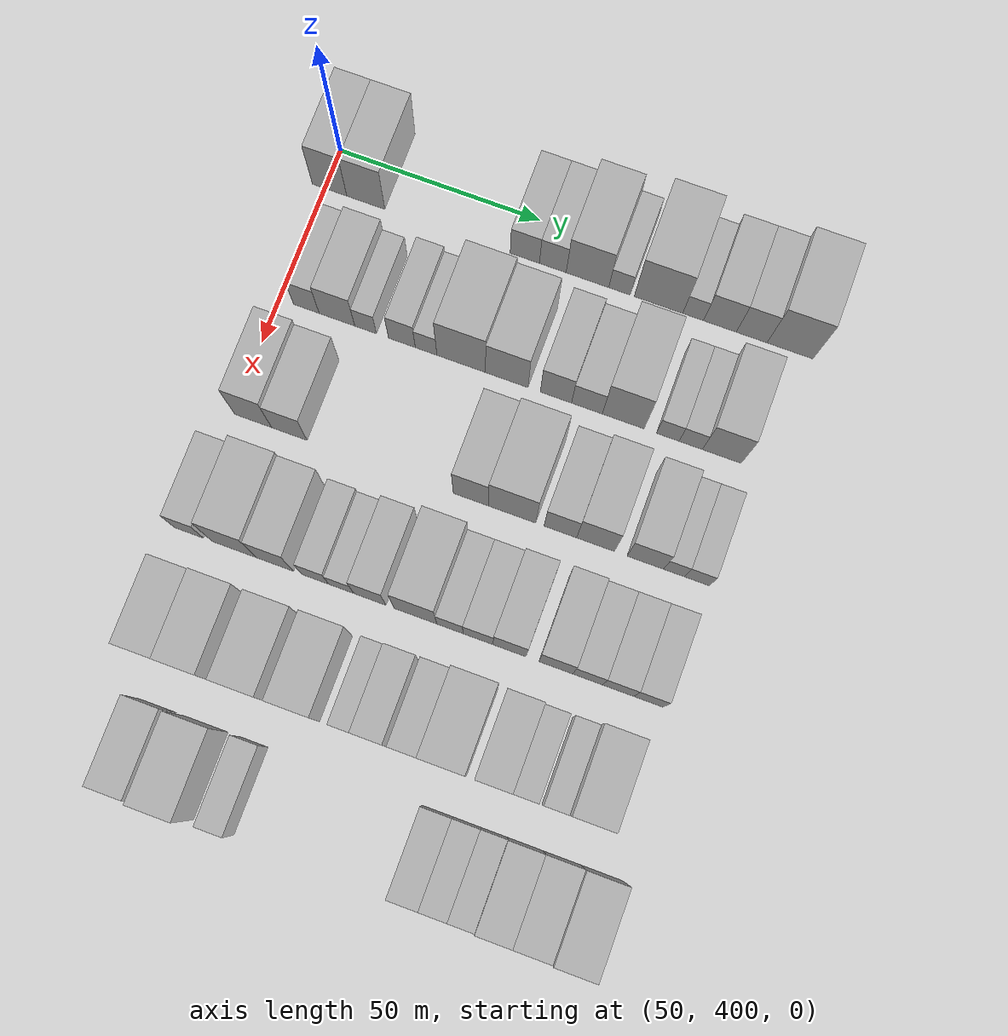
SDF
<sdf version="1.6">
 <world name="default">
  <model name="building_102">
   <static>1</static>
   <pose>50.0000 401.1192 0 0.000000 0.000000 0.000000</pose>
   <link name="link">
    <pose>0 0 10.50 0 0 0</pose>
    <collision name="collision"><geometry><box><size>20.0000 8.6512 21.0000</size></box></geometry></collision>
    <visual name="visual">
     <cast_shadows>0</cast_shadows>
     <geometry><box><size>20.0000 8.6512 21.0000</size></box></geometry>
     <material>
      <script>
       <uri>model://HANNAS_wall/materials/scripts</uri>
       <uri>model://HANNAS_wall/materials/textures</uri>
       <name>vrc/HANNAS_wall</name>
      </script>
     </material>
    </visual>
   </link>
  </model>
  <model name="building_103">
   <static>1</static>
   <pose>50.0000 410.2234 0 0.000000 0.000000 0.000000</pose>
   <link name="link">
    <pose>0 0 10.50 0 0 0</pose>
    <collision name="collision"><geometry><box><size>20.0000 9.5572 21.0000</size></box></geometry></collision>
    <visual name="visual">
     <cast_shadows>0</cast_shadows>
     <geometry><box><size>20.0000 9.5572 21.0000</size></box></geometry>
     <material>
      <script>
       <uri>model://HANNAS_wall/materials/scripts</uri>
       <uri>model://HANNAS_wall/materials/textures</uri>
       <name>vrc/HANNAS_wall</name>
      </script>
     </material>
    </visual>
   </link>
  </model>
  <model name="building_104">
   <static>1</static>
   <pose>50.0000 449.8563 0 0.000000 0.000000 0.000000</pose>
   <link name="link">
    <pose>0 0 7.50 0 0 0</pose>
    <collision name="collision"><geometry><box><size>20.0000 7.2362 15.0000</size></box></geometry></collision>
    <visual name="visual">
     <cast_shadows>0</cast_shadows>
     <geometry><box><size>20.0000 7.2362 15.0000</size></box></geometry>
     <material>
      <script>
       <uri>model://HANNAS_wall/materials/scripts</uri>
       <uri>model://HANNAS_wall/materials/textures</uri>
       <name>vrc/HANNAS_wall</name>
      </script>
     </material>
    </visual>
   </link>
  </model>
  <model name="building_105">
   <static>1</static>
   <pose>50.0000 456.7717 0 0.000000 0.000000 0.000000</pose>
   <link name="link">
    <pose>0 0 7.50 0 0 0</pose>
    <collision name="collision"><geometry><box><size>20.0000 6.5946 15.0000</size></box></geometry></collision>
    <visual name="visual">
     <cast_shadows>0</cast_shadows>
     <geometry><box><size>20.0000 6.5946 15.0000</size></box></geometry>
     <material>
      <script>
       <uri>model://HANNAS_wall/materials/scripts</uri>
       <uri>model://HANNAS_wall/materials/textures</uri>
       <name>vrc/HANNAS_wall</name>
      </script>
     </material>
    </visual>
   </link>
  </model>
  <model name="building_106">
   <static>1</static>
   <pose>50.0000 465.3094 0 0.000000 0.000000 0.000000</pose>
   <link name="link">
    <pose>0 0 10.50 0 0 0</pose>
    <collision name="collision"><geometry><box><size>20.0000 10.4807 21.0000</size></box></geometry></collision>
    <visual name="visual">
     <cast_shadows>0</cast_shadows>
     <geometry><box><size>20.0000 10.4807 21.0000</size></box></geometry>
     <material>
      <script>
       <uri>model://HANNAS_wall/materials/scripts</uri>
       <uri>model://HANNAS_wall/materials/textures</uri>
       <name>vrc/HANNAS_wall</name>
      </script>
     </material>
    </visual>
   </link>
  </model>
  <model name="building_107">
   <static>1</static>
   <pose>50.0000 473.1803 0 0.000000 0.000000 0.000000</pose>
   <link name="link">
    <pose>0 0 6.00 0 0 0</pose>
    <collision name="collision"><geometry><box><size>20.0000 5.2612 12.0000</size></box></geometry></collision>
    <visual name="visual">
     <cast_shadows>0</cast_shadows>
     <geometry><box><size>20.0000 5.2612 12.0000</size></box></geometry>
     <material>
      <script>
       <uri>model://HANNAS_wall/materials/scripts</uri>
       <uri>model://HANNAS_wall/materials/textures</uri>
       <name>vrc/HANNAS_wall</name>
      </script>
     </material>
    </visual>
   </link>
  </model>
  <model name="building_108">
   <static>1</static>
   <pose>50.0000 482.7306 0 0.000000 0.000000 0.000000</pose>
   <link name="link">
    <pose>0 0 12.00 0 0 0</pose>
    <collision name="collision"><geometry><box><size>20.0000 11.8395 24.0000</size></box></geometry></collision>
    <visual name="visual">
     <cast_shadows>0</cast_shadows>
     <geometry><box><size>20.0000 11.8395 24.0000</size></box></geometry>
     <material>
      <script>
       <uri>model://HANNAS_wall/materials/scripts</uri>
       <uri>model://HANNAS_wall/materials/textures</uri>
       <name>vrc/HANNAS_wall</name>
      </script>
     </material>
    </visual>
   </link>
  </model>
  <model name="building_109">
   <static>1</static>
   <pose>50.0000 491.1917 0 0.000000 0.000000 0.000000</pose>
   <link name="link">
    <pose>0 0 6.00 0 0 0</pose>
    <collision name="collision"><geometry><box><size>20.0000 5.0825 12.0000</size></box></geometry></collision>
    <visual name="visual">
     <cast_shadows>0</cast_shadows>
     <geometry><box><size>20.0000 5.0825 12.0000</size></box></geometry>
     <material>
      <script>
       <uri>model://HANNAS_wall/materials/scripts</uri>
       <uri>model://HANNAS_wall/materials/textures</uri>
       <name>vrc/HANNAS_wall</name>
      </script>
     </material>
    </visual>
   </link>
  </model>
  <model name="building_110">
   <static>1</static>
   <pose>50.0000 497.7249 0 0.000000 0.000000 0.000000</pose>
   <link name="link">
    <pose>0 0 9.00 0 0 0</pose>
    <collision name="collision"><geometry><box><size>20.0000 7.9839 18.0000</size></box></geometry></collision>
    <visual name="visual">
     <cast_shadows>0</cast_shadows>
     <geometry><box><size>20.0000 7.9839 18.0000</size></box></geometry>
     <material>
      <script>
       <uri>model://HANNAS_wall/materials/scripts</uri>
       <uri>model://HANNAS_wall/materials/textures</uri>
       <name>vrc/HANNAS_wall</name>
      </script>
     </material>
    </visual>
   </link>
  </model>
  <model name="building_111">
   <static>1</static>
   <pose>50.0000 505.4393 0 0.000000 0.000000 0.000000</pose>
   <link name="link">
    <pose>0 0 9.00 0 0 0</pose>
    <collision name="collision"><geometry><box><size>20.0000 7.4450 18.0000</size></box></geometry></collision>
    <visual name="visual">
     <cast_shadows>0</cast_shadows>
     <geometry><box><size>20.0000 7.4450 18.0000</size></box></geometry>
     <material>
      <script>
       <uri>model://HANNAS_wall/materials/scripts</uri>
       <uri>model://HANNAS_wall/materials/textures</uri>
       <name>vrc/HANNAS_wall</name>
      </script>
     </material>
    </visual>
   </link>
  </model>
  <model name="building_112">
   <static>1</static>
   <pose>50.0000 514.7211 0 0.000000 0.000000 0.000000</pose>
   <link name="link">
    <pose>0 0 12.00 0 0 0</pose>
    <collision name="collision"><geometry><box><size>20.0000 11.1186 24.0000</size></box></geometry></collision>
    <visual name="visual">
     <cast_shadows>0</cast_shadows>
     <geometry><box><size>20.0000 11.1186 24.0000</size></box></geometry>
     <material>
      <script>
       <uri>model://HANNAS_wall/materials/scripts</uri>
       <uri>model://HANNAS_wall/materials/textures</uri>
       <name>vrc/HANNAS_wall</name>
      </script>
     </material>
    </visual>
   </link>
  </model>
  <model name="building_213">
   <static>1</static>
   <pose>79.0000 406.6968 0 0.000000 0.000000 0.000000</pose>
   <link name="link">
    <pose>0 0 7.50 0 0 0</pose>
    <collision name="collision"><geometry><box><size>20.0000 6.3321 15.0000</size></box></geometry></collision>
    <visual name="visual">
     <cast_shadows>0</cast_shadows>
     <geometry><box><size>20.0000 6.3321 15.0000</size></box></geometry>
     <material>
      <script>
       <uri>model://HANNAS_wall/materials/scripts</uri>
       <uri>model://HANNAS_wall/materials/textures</uri>
       <name>vrc/HANNAS_wall</name>
      </script>
     </material>
    </visual>
   </link>
  </model>
  <model name="building_214">
   <static>1</static>
   <pose>79.0000 414.2678 0 0.000000 0.000000 0.000000</pose>
   <link name="link">
    <pose>0 0 9.00 0 0 0</pose>
    <collision name="collision"><geometry><box><size>20.0000 8.8099 18.0000</size></box></geometry></collision>
    <visual name="visual">
     <cast_shadows>0</cast_shadows>
     <geometry><box><size>20.0000 8.8099 18.0000</size></box></geometry>
     <material>
      <script>
       <uri>model://HANNAS_wall/materials/scripts</uri>
       <uri>model://HANNAS_wall/materials/textures</uri>
       <name>vrc/HANNAS_wall</name>
      </script>
     </material>
    </visual>
   </link>
  </model>
  <model name="building_215">
   <static>1</static>
   <pose>79.0000 421.3421 0 0.000000 0.000000 0.000000</pose>
   <link name="link">
    <pose>0 0 6.00 0 0 0</pose>
    <collision name="collision"><geometry><box><size>20.0000 5.3387 12.0000</size></box></geometry></collision>
    <visual name="visual">
     <cast_shadows>0</cast_shadows>
     <geometry><box><size>20.0000 5.3387 12.0000</size></box></geometry>
     <material>
      <script>
       <uri>model://HANNAS_wall/materials/scripts</uri>
       <uri>model://HANNAS_wall/materials/textures</uri>
       <name>vrc/HANNAS_wall</name>
      </script>
     </material>
    </visual>
   </link>
  </model>
  <model name="building_216">
   <static>1</static>
   <pose>79.0000 430.2997 0 0.000000 0.000000 0.000000</pose>
   <link name="link">
    <pose>0 0 7.50 0 0 0</pose>
    <collision name="collision"><geometry><box><size>20.0000 6.5765 15.0000</size></box></geometry></collision>
    <visual name="visual">
     <cast_shadows>0</cast_shadows>
     <geometry><box><size>20.0000 6.5765 15.0000</size></box></geometry>
     <material>
      <script>
       <uri>model://HANNAS_wall/materials/scripts</uri>
       <uri>model://HANNAS_wall/materials/textures</uri>
       <name>vrc/HANNAS_wall</name>
      </script>
     </material>
    </visual>
   </link>
  </model>
  <model name="building_217">
   <static>1</static>
   <pose>79.0000 436.2301 0 0.000000 0.000000 0.000000</pose>
   <link name="link">
    <pose>0 0 6.00 0 0 0</pose>
    <collision name="collision"><geometry><box><size>20.0000 5.2844 12.0000</size></box></geometry></collision>
    <visual name="visual">
     <cast_shadows>0</cast_shadows>
     <geometry><box><size>20.0000 5.2844 12.0000</size></box></geometry>
     <material>
      <script>
       <uri>model://HANNAS_wall/materials/scripts</uri>
       <uri>model://HANNAS_wall/materials/textures</uri>
       <name>vrc/HANNAS_wall</name>
      </script>
     </material>
    </visual>
   </link>
  </model>
  <model name="building_218">
   <static>1</static>
   <pose>79.0000 444.8339 0 0.000000 0.000000 0.000000</pose>
   <link name="link">
    <pose>0 0 12.00 0 0 0</pose>
    <collision name="collision"><geometry><box><size>20.0000 11.9231 24.0000</size></box></geometry></collision>
    <visual name="visual">
     <cast_shadows>0</cast_shadows>
     <geometry><box><size>20.0000 11.9231 24.0000</size></box></geometry>
     <material>
      <script>
       <uri>model://HANNAS_wall/materials/scripts</uri>
       <uri>model://HANNAS_wall/materials/textures</uri>
       <name>vrc/HANNAS_wall</name>
      </script>
     </material>
    </visual>
   </link>
  </model>
  <model name="building_219">
   <static>1</static>
   <pose>79.0000 455.9628 0 0.000000 0.000000 0.000000</pose>
   <link name="link">
    <pose>0 0 10.50 0 0 0</pose>
    <collision name="collision"><geometry><box><size>20.0000 10.3347 21.0000</size></box></geometry></collision>
    <visual name="visual">
     <cast_shadows>0</cast_shadows>
     <geometry><box><size>20.0000 10.3347 21.0000</size></box></geometry>
     <material>
      <script>
       <uri>model://HANNAS_wall/materials/scripts</uri>
       <uri>model://HANNAS_wall/materials/textures</uri>
       <name>vrc/HANNAS_wall</name>
      </script>
     </material>
    </visual>
   </link>
  </model>
  <model name="building_220">
   <static>1</static>
   <pose>79.0000 467.9159 0 0.000000 0.000000 0.000000</pose>
   <link name="link">
    <pose>0 0 9.00 0 0 0</pose>
    <collision name="collision"><geometry><box><size>20.0000 7.5715 18.0000</size></box></geometry></collision>
    <visual name="visual">
     <cast_shadows>0</cast_shadows>
     <geometry><box><size>20.0000 7.5715 18.0000</size></box></geometry>
     <material>
      <script>
       <uri>model://HANNAS_wall/materials/scripts</uri>
       <uri>model://HANNAS_wall/materials/textures</uri>
       <name>vrc/HANNAS_wall</name>
      </script>
     </material>
    </visual>
   </link>
  </model>
  <model name="building_221">
   <static>1</static>
   <pose>79.0000 475.4288 0 0.000000 0.000000 0.000000</pose>
   <link name="link">
    <pose>0 0 7.50 0 0 0</pose>
    <collision name="collision"><geometry><box><size>20.0000 7.4543 15.0000</size></box></geometry></collision>
    <visual name="visual">
     <cast_shadows>0</cast_shadows>
     <geometry><box><size>20.0000 7.4543 15.0000</size></box></geometry>
     <material>
      <script>
       <uri>model://HANNAS_wall/materials/scripts</uri>
       <uri>model://HANNAS_wall/materials/textures</uri>
       <name>vrc/HANNAS_wall</name>
      </script>
     </material>
    </visual>
   </link>
  </model>
  <model name="building_222">
   <static>1</static>
   <pose>79.0000 484.1925 0 0.000000 0.000000 0.000000</pose>
   <link name="link">
    <pose>0 0 12.00 0 0 0</pose>
    <collision name="collision"><geometry><box><size>20.0000 10.0730 24.0000</size></box></geometry></collision>
    <visual name="visual">
     <cast_shadows>0</cast_shadows>
     <geometry><box><size>20.0000 10.0730 24.0000</size></box></geometry>
     <material>
      <script>
       <uri>model://HANNAS_wall/materials/scripts</uri>
       <uri>model://HANNAS_wall/materials/textures</uri>
       <name>vrc/HANNAS_wall</name>
      </script>
     </material>
    </visual>
   </link>
  </model>
  <model name="building_223">
   <static>1</static>
   <pose>79.0000 494.9337 0 0.000000 0.000000 0.000000</pose>
   <link name="link">
    <pose>0 0 6.00 0 0 0</pose>
    <collision name="collision"><geometry><box><size>20.0000 5.4095 12.0000</size></box></geometry></collision>
    <visual name="visual">
     <cast_shadows>0</cast_shadows>
     <geometry><box><size>20.0000 5.4095 12.0000</size></box></geometry>
     <material>
      <script>
       <uri>model://HANNAS_wall/materials/scripts</uri>
       <uri>model://HANNAS_wall/materials/textures</uri>
       <name>vrc/HANNAS_wall</name>
      </script>
     </material>
    </visual>
   </link>
  </model>
  <model name="building_224">
   <static>1</static>
   <pose>79.0000 500.4293 0 0.000000 0.000000 0.000000</pose>
   <link name="link">
    <pose>0 0 6.00 0 0 0</pose>
    <collision name="collision"><geometry><box><size>20.0000 5.5817 12.0000</size></box></geometry></collision>
    <visual name="visual">
     <cast_shadows>0</cast_shadows>
     <geometry><box><size>20.0000 5.5817 12.0000</size></box></geometry>
     <material>
      <script>
       <uri>model://HANNAS_wall/materials/scripts</uri>
       <uri>model://HANNAS_wall/materials/textures</uri>
       <name>vrc/HANNAS_wall</name>
      </script>
     </material>
    </visual>
   </link>
  </model>
  <model name="building_225">
   <static>1</static>
   <pose>79.0000 507.8775 0 0.000000 0.000000 0.000000</pose>
   <link name="link">
    <pose>0 0 10.50 0 0 0</pose>
    <collision name="collision"><geometry><box><size>20.0000 9.3146 21.0000</size></box></geometry></collision>
    <visual name="visual">
     <cast_shadows>0</cast_shadows>
     <geometry><box><size>20.0000 9.3146 21.0000</size></box></geometry>
     <material>
      <script>
       <uri>model://HANNAS_wall/materials/scripts</uri>
       <uri>model://HANNAS_wall/materials/textures</uri>
       <name>vrc/HANNAS_wall</name>
      </script>
     </material>
    </visual>
   </link>
  </model>
  <model name="building_325">
   <static>1</static>
   <pose>108.0000 405.0878 0 0.000000 0.000000 0.000000</pose>
   <link name="link">
    <pose>0 0 10.50 0 0 0</pose>
    <collision name="collision"><geometry><box><size>20.0000 9.0426 21.0000</size></box></geometry></collision>
    <visual name="visual">
     <cast_shadows>0</cast_shadows>
     <geometry><box><size>20.0000 9.0426 21.0000</size></box></geometry>
     <material>
      <script>
       <uri>model://HANNAS_wall/materials/scripts</uri>
       <uri>model://HANNAS_wall/materials/textures</uri>
       <name>vrc/HANNAS_wall</name>
      </script>
     </material>
    </visual>
   </link>
  </model>
  <model name="building_326">
   <static>1</static>
   <pose>108.0000 413.9372 0 0.000000 0.000000 0.000000</pose>
   <link name="link">
    <pose>0 0 9.00 0 0 0</pose>
    <collision name="collision"><geometry><box><size>20.0000 8.6563 18.0000</size></box></geometry></collision>
    <visual name="visual">
     <cast_shadows>0</cast_shadows>
     <geometry><box><size>20.0000 8.6563 18.0000</size></box></geometry>
     <material>
      <script>
       <uri>model://HANNAS_wall/materials/scripts</uri>
       <uri>model://HANNAS_wall/materials/textures</uri>
       <name>vrc/HANNAS_wall</name>
      </script>
     </material>
    </visual>
   </link>
  </model>
  <model name="building_327">
   <static>1</static>
   <pose>108.0000 457.9388 0 0.000000 0.000000 0.000000</pose>
   <link name="link">
    <pose>0 0 10.50 0 0 0</pose>
    <collision name="collision"><geometry><box><size>20.0000 8.4489 21.0000</size></box></geometry></collision>
    <visual name="visual">
     <cast_shadows>0</cast_shadows>
     <geometry><box><size>20.0000 8.4489 21.0000</size></box></geometry>
     <material>
      <script>
       <uri>model://HANNAS_wall/materials/scripts</uri>
       <uri>model://HANNAS_wall/materials/textures</uri>
       <name>vrc/HANNAS_wall</name>
      </script>
     </material>
    </visual>
   </link>
  </model>
  <model name="building_328">
   <static>1</static>
   <pose>108.0000 467.8177 0 0.000000 0.000000 0.000000</pose>
   <link name="link">
    <pose>0 0 12.00 0 0 0</pose>
    <collision name="collision"><geometry><box><size>20.0000 11.3090 24.0000</size></box></geometry></collision>
    <visual name="visual">
     <cast_shadows>0</cast_shadows>
     <geometry><box><size>20.0000 11.3090 24.0000</size></box></geometry>
     <material>
      <script>
       <uri>model://HANNAS_wall/materials/scripts</uri>
       <uri>model://HANNAS_wall/materials/textures</uri>
       <name>vrc/HANNAS_wall</name>
      </script>
     </material>
    </visual>
   </link>
  </model>
  <model name="building_329">
   <static>1</static>
   <pose>108.0000 479.3497 0 0.000000 0.000000 0.000000</pose>
   <link name="link">
    <pose>0 0 9.00 0 0 0</pose>
    <collision name="collision"><geometry><box><size>20.0000 7.7550 18.0000</size></box></geometry></collision>
    <visual name="visual">
     <cast_shadows>0</cast_shadows>
     <geometry><box><size>20.0000 7.7550 18.0000</size></box></geometry>
     <material>
      <script>
       <uri>model://HANNAS_wall/materials/scripts</uri>
       <uri>model://HANNAS_wall/materials/textures</uri>
       <name>vrc/HANNAS_wall</name>
      </script>
     </material>
    </visual>
   </link>
  </model>
  <model name="building_330">
   <static>1</static>
   <pose>108.0000 487.7214 0 0.000000 0.000000 0.000000</pose>
   <link name="link">
    <pose>0 0 10.50 0 0 0</pose>
    <collision name="collision"><geometry><box><size>20.0000 8.9883 21.0000</size></box></geometry></collision>
    <visual name="visual">
     <cast_shadows>0</cast_shadows>
     <geometry><box><size>20.0000 8.9883 21.0000</size></box></geometry>
     <material>
      <script>
       <uri>model://HANNAS_wall/materials/scripts</uri>
       <uri>model://HANNAS_wall/materials/textures</uri>
       <name>vrc/HANNAS_wall</name>
      </script>
     </material>
    </visual>
   </link>
  </model>
  <model name="building_331">
   <static>1</static>
   <pose>108.0000 499.5410 0 0.000000 0.000000 0.000000</pose>
   <link name="link">
    <pose>0 0 9.00 0 0 0</pose>
    <collision name="collision"><geometry><box><size>20.0000 8.6510 18.0000</size></box></geometry></collision>
    <visual name="visual">
     <cast_shadows>0</cast_shadows>
     <geometry><box><size>20.0000 8.6510 18.0000</size></box></geometry>
     <material>
      <script>
       <uri>model://HANNAS_wall/materials/scripts</uri>
       <uri>model://HANNAS_wall/materials/textures</uri>
       <name>vrc/HANNAS_wall</name>
      </script>
     </material>
    </visual>
   </link>
  </model>
  <model name="building_332">
   <static>1</static>
   <pose>108.0000 506.3463 0 0.000000 0.000000 0.000000</pose>
   <link name="link">
    <pose>0 0 6.00 0 0 0</pose>
    <collision name="collision"><geometry><box><size>20.0000 4.9596 12.0000</size></box></geometry></collision>
    <visual name="visual">
     <cast_shadows>0</cast_shadows>
     <geometry><box><size>20.0000 4.9596 12.0000</size></box></geometry>
     <material>
      <script>
       <uri>model://HANNAS_wall/materials/scripts</uri>
       <uri>model://HANNAS_wall/materials/textures</uri>
       <name>vrc/HANNAS_wall</name>
      </script>
     </material>
    </visual>
   </link>
  </model>
  <model name="building_333">
   <static>1</static>
   <pose>108.0000 511.7402 0 0.000000 0.000000 0.000000</pose>
   <link name="link">
    <pose>0 0 6.00 0 0 0</pose>
    <collision name="collision"><geometry><box><size>20.0000 5.8282 12.0000</size></box></geometry></collision>
    <visual name="visual">
     <cast_shadows>0</cast_shadows>
     <geometry><box><size>20.0000 5.8282 12.0000</size></box></geometry>
     <material>
      <script>
       <uri>model://HANNAS_wall/materials/scripts</uri>
       <uri>model://HANNAS_wall/materials/textures</uri>
       <name>vrc/HANNAS_wall</name>
      </script>
     </material>
    </visual>
   </link>
  </model>
  <model name="building_437">
   <static>1</static>
   <pose>137.0000 401.2152 0 0.000000 0.000000 0.000000</pose>
   <link name="link">
    <pose>0 0 7.50 0 0 0</pose>
    <collision name="collision"><geometry><box><size>20.0000 7.1507 15.0000</size></box></geometry></collision>
    <visual name="visual">
     <cast_shadows>0</cast_shadows>
     <geometry><box><size>20.0000 7.1507 15.0000</size></box></geometry>
     <material>
      <script>
       <uri>model://HANNAS_wall/materials/scripts</uri>
       <uri>model://HANNAS_wall/materials/textures</uri>
       <name>vrc/HANNAS_wall</name>
      </script>
     </material>
    </visual>
   </link>
  </model>
  <model name="building_438">
   <static>1</static>
   <pose>137.0000 412.1539 0 0.000000 0.000000 0.000000</pose>
   <link name="link">
    <pose>0 0 12.00 0 0 0</pose>
    <collision name="collision"><geometry><box><size>20.0000 10.7267 24.0000</size></box></geometry></collision>
    <visual name="visual">
     <cast_shadows>0</cast_shadows>
     <geometry><box><size>20.0000 10.7267 24.0000</size></box></geometry>
     <material>
      <script>
       <uri>model://HANNAS_wall/materials/scripts</uri>
       <uri>model://HANNAS_wall/materials/textures</uri>
       <name>vrc/HANNAS_wall</name>
      </script>
     </material>
    </visual>
   </link>
  </model>
  <model name="building_439">
   <static>1</static>
   <pose>137.0000 421.9658 0 0.000000 0.000000 0.000000</pose>
   <link name="link">
    <pose>0 0 10.50 0 0 0</pose>
    <collision name="collision"><geometry><box><size>20.0000 8.8972 21.0000</size></box></geometry></collision>
    <visual name="visual">
     <cast_shadows>0</cast_shadows>
     <geometry><box><size>20.0000 8.8972 21.0000</size></box></geometry>
     <material>
      <script>
       <uri>model://HANNAS_wall/materials/scripts</uri>
       <uri>model://HANNAS_wall/materials/textures</uri>
       <name>vrc/HANNAS_wall</name>
      </script>
     </material>
    </visual>
   </link>
  </model>
  <model name="building_440">
   <static>1</static>
   <pose>137.0000 431.6590 0 0.000000 0.000000 0.000000</pose>
   <link name="link">
    <pose>0 0 7.50 0 0 0</pose>
    <collision name="collision"><geometry><box><size>20.0000 6.4891 15.0000</size></box></geometry></collision>
    <visual name="visual">
     <cast_shadows>0</cast_shadows>
     <geometry><box><size>20.0000 6.4891 15.0000</size></box></geometry>
     <material>
      <script>
       <uri>model://HANNAS_wall/materials/scripts</uri>
       <uri>model://HANNAS_wall/materials/textures</uri>
       <name>vrc/HANNAS_wall</name>
      </script>
     </material>
    </visual>
   </link>
  </model>
  <model name="building_441">
   <static>1</static>
   <pose>137.0000 437.8970 0 0.000000 0.000000 0.000000</pose>
   <link name="link">
    <pose>0 0 6.00 0 0 0</pose>
    <collision name="collision"><geometry><box><size>20.0000 5.9869 12.0000</size></box></geometry></collision>
    <visual name="visual">
     <cast_shadows>0</cast_shadows>
     <geometry><box><size>20.0000 5.9869 12.0000</size></box></geometry>
     <material>
      <script>
       <uri>model://HANNAS_wall/materials/scripts</uri>
       <uri>model://HANNAS_wall/materials/textures</uri>
       <name>vrc/HANNAS_wall</name>
      </script>
     </material>
    </visual>
   </link>
  </model>
  <model name="building_442">
   <static>1</static>
   <pose>137.0000 444.7171 0 0.000000 0.000000 0.000000</pose>
   <link name="link">
    <pose>0 0 9.00 0 0 0</pose>
    <collision name="collision"><geometry><box><size>20.0000 7.6533 18.0000</size></box></geometry></collision>
    <visual name="visual">
     <cast_shadows>0</cast_shadows>
     <geometry><box><size>20.0000 7.6533 18.0000</size></box></geometry>
     <material>
      <script>
       <uri>model://HANNAS_wall/materials/scripts</uri>
       <uri>model://HANNAS_wall/materials/textures</uri>
       <name>vrc/HANNAS_wall</name>
      </script>
     </material>
    </visual>
   </link>
  </model>
  <model name="building_443">
   <static>1</static>
   <pose>137.0000 455.5879 0 0.000000 0.000000 0.000000</pose>
   <link name="link">
    <pose>0 0 12.00 0 0 0</pose>
    <collision name="collision"><geometry><box><size>20.0000 10.0884 24.0000</size></box></geometry></collision>
    <visual name="visual">
     <cast_shadows>0</cast_shadows>
     <geometry><box><size>20.0000 10.0884 24.0000</size></box></geometry>
     <material>
      <script>
       <uri>model://HANNAS_wall/materials/scripts</uri>
       <uri>model://HANNAS_wall/materials/textures</uri>
       <name>vrc/HANNAS_wall</name>
      </script>
     </material>
    </visual>
   </link>
  </model>
  <model name="building_444">
   <static>1</static>
   <pose>137.0000 463.7456 0 0.000000 0.000000 0.000000</pose>
   <link name="link">
    <pose>0 0 7.50 0 0 0</pose>
    <collision name="collision"><geometry><box><size>20.0000 6.2269 15.0000</size></box></geometry></collision>
    <visual name="visual">
     <cast_shadows>0</cast_shadows>
     <geometry><box><size>20.0000 6.2269 15.0000</size></box></geometry>
     <material>
      <script>
       <uri>model://HANNAS_wall/materials/scripts</uri>
       <uri>model://HANNAS_wall/materials/textures</uri>
       <name>vrc/HANNAS_wall</name>
      </script>
     </material>
    </visual>
   </link>
  </model>
  <model name="building_445">
   <static>1</static>
   <pose>137.0000 470.3722 0 0.000000 0.000000 0.000000</pose>
   <link name="link">
    <pose>0 0 7.50 0 0 0</pose>
    <collision name="collision"><geometry><box><size>20.0000 7.0263 15.0000</size></box></geometry></collision>
    <visual name="visual">
     <cast_shadows>0</cast_shadows>
     <geometry><box><size>20.0000 7.0263 15.0000</size></box></geometry>
     <material>
      <script>
       <uri>model://HANNAS_wall/materials/scripts</uri>
       <uri>model://HANNAS_wall/materials/textures</uri>
       <name>vrc/HANNAS_wall</name>
      </script>
     </material>
    </visual>
   </link>
  </model>
  <model name="building_446">
   <static>1</static>
   <pose>137.0000 477.7766 0 0.000000 0.000000 0.000000</pose>
   <link name="link">
    <pose>0 0 9.00 0 0 0</pose>
    <collision name="collision"><geometry><box><size>20.0000 7.7826 18.0000</size></box></geometry></collision>
    <visual name="visual">
     <cast_shadows>0</cast_shadows>
     <geometry><box><size>20.0000 7.7826 18.0000</size></box></geometry>
     <material>
      <script>
       <uri>model://HANNAS_wall/materials/scripts</uri>
       <uri>model://HANNAS_wall/materials/textures</uri>
       <name>vrc/HANNAS_wall</name>
      </script>
     </material>
    </visual>
   </link>
  </model>
  <model name="building_447">
   <static>1</static>
   <pose>137.0000 488.6345 0 0.000000 0.000000 0.000000</pose>
   <link name="link">
    <pose>0 0 9.00 0 0 0</pose>
    <collision name="collision"><geometry><box><size>20.0000 7.9332 18.0000</size></box></geometry></collision>
    <visual name="visual">
     <cast_shadows>0</cast_shadows>
     <geometry><box><size>20.0000 7.9332 18.0000</size></box></geometry>
     <material>
      <script>
       <uri>model://HANNAS_wall/materials/scripts</uri>
       <uri>model://HANNAS_wall/materials/textures</uri>
       <name>vrc/HANNAS_wall</name>
      </script>
     </material>
    </visual>
   </link>
  </model>
  <model name="building_448">
   <static>1</static>
   <pose>137.0000 496.0687 0 0.000000 0.000000 0.000000</pose>
   <link name="link">
    <pose>0 0 7.50 0 0 0</pose>
    <collision name="collision"><geometry><box><size>20.0000 6.9352 15.0000</size></box></geometry></collision>
    <visual name="visual">
     <cast_shadows>0</cast_shadows>
     <geometry><box><size>20.0000 6.9352 15.0000</size></box></geometry>
     <material>
      <script>
       <uri>model://HANNAS_wall/materials/scripts</uri>
       <uri>model://HANNAS_wall/materials/textures</uri>
       <name>vrc/HANNAS_wall</name>
      </script>
     </material>
    </visual>
   </link>
  </model>
  <model name="building_449">
   <static>1</static>
   <pose>137.0000 503.1755 0 0.000000 0.000000 0.000000</pose>
   <link name="link">
    <pose>0 0 7.50 0 0 0</pose>
    <collision name="collision"><geometry><box><size>20.0000 7.2783 15.0000</size></box></geometry></collision>
    <visual name="visual">
     <cast_shadows>0</cast_shadows>
     <geometry><box><size>20.0000 7.2783 15.0000</size></box></geometry>
     <material>
      <script>
       <uri>model://HANNAS_wall/materials/scripts</uri>
       <uri>model://HANNAS_wall/materials/textures</uri>
       <name>vrc/HANNAS_wall</name>
      </script>
     </material>
    </visual>
   </link>
  </model>
  <model name="building_450">
   <static>1</static>
   <pose>137.0000 510.2022 0 0.000000 0.000000 0.000000</pose>
   <link name="link">
    <pose>0 0 7.50 0 0 0</pose>
    <collision name="collision"><geometry><box><size>20.0000 6.7752 15.0000</size></box></geometry></collision>
    <visual name="visual">
     <cast_shadows>0</cast_shadows>
     <geometry><box><size>20.0000 6.7752 15.0000</size></box></geometry>
     <material>
      <script>
       <uri>model://HANNAS_wall/materials/scripts</uri>
       <uri>model://HANNAS_wall/materials/textures</uri>
       <name>vrc/HANNAS_wall</name>
      </script>
     </material>
    </visual>
   </link>
  </model>
  <model name="building_556">
   <static>1</static>
   <pose>166.0000 404.5984 0 0.000000 0.000000 0.000000</pose>
   <link name="link">
    <pose>0 0 10.50 0 0 0</pose>
    <collision name="collision"><geometry><box><size>20.0000 9.9008 21.0000</size></box></geometry></collision>
    <visual name="visual">
     <cast_shadows>0</cast_shadows>
     <geometry><box><size>20.0000 9.9008 21.0000</size></box></geometry>
     <material>
      <script>
       <uri>model://HANNAS_wall/materials/scripts</uri>
       <uri>model://HANNAS_wall/materials/textures</uri>
       <name>vrc/HANNAS_wall</name>
      </script>
     </material>
    </visual>
   </link>
  </model>
  <model name="building_557">
   <static>1</static>
   <pose>166.0000 414.4468 0 0.000000 0.000000 0.000000</pose>
   <link name="link">
    <pose>0 0 12.00 0 0 0</pose>
    <collision name="collision"><geometry><box><size>20.0000 9.7961 24.0000</size></box></geometry></collision>
    <visual name="visual">
     <cast_shadows>0</cast_shadows>
     <geometry><box><size>20.0000 9.7961 24.0000</size></box></geometry>
     <material>
      <script>
       <uri>model://HANNAS_wall/materials/scripts</uri>
       <uri>model://HANNAS_wall/materials/textures</uri>
       <name>vrc/HANNAS_wall</name>
      </script>
     </material>
    </visual>
   </link>
  </model>
  <model name="building_558">
   <static>1</static>
   <pose>166.0000 426.5941 0 0.000000 0.000000 0.000000</pose>
   <link name="link">
    <pose>0 0 10.50 0 0 0</pose>
    <collision name="collision"><geometry><box><size>20.0000 10.4985 21.0000</size></box></geometry></collision>
    <visual name="visual">
     <cast_shadows>0</cast_shadows>
     <geometry><box><size>20.0000 10.4985 21.0000</size></box></geometry>
     <material>
      <script>
       <uri>model://HANNAS_wall/materials/scripts</uri>
       <uri>model://HANNAS_wall/materials/textures</uri>
       <name>vrc/HANNAS_wall</name>
      </script>
     </material>
    </visual>
   </link>
  </model>
  <model name="building_559">
   <static>1</static>
   <pose>166.0000 438.9332 0 0.000000 0.000000 0.000000</pose>
   <link name="link">
    <pose>0 0 10.50 0 0 0</pose>
    <collision name="collision"><geometry><box><size>20.0000 10.1797 21.0000</size></box></geometry></collision>
    <visual name="visual">
     <cast_shadows>0</cast_shadows>
     <geometry><box><size>20.0000 10.1797 21.0000</size></box></geometry>
     <material>
      <script>
       <uri>model://HANNAS_wall/materials/scripts</uri>
       <uri>model://HANNAS_wall/materials/textures</uri>
       <name>vrc/HANNAS_wall</name>
      </script>
     </material>
    </visual>
   </link>
  </model>
  <model name="building_560">
   <static>1</static>
   <pose>166.0000 449.6420 0 0.000000 0.000000 0.000000</pose>
   <link name="link">
    <pose>0 0 6.00 0 0 0</pose>
    <collision name="collision"><geometry><box><size>20.0000 5.2378 12.0000</size></box></geometry></collision>
    <visual name="visual">
     <cast_shadows>0</cast_shadows>
     <geometry><box><size>20.0000 5.2378 12.0000</size></box></geometry>
     <material>
      <script>
       <uri>model://HANNAS_wall/materials/scripts</uri>
       <uri>model://HANNAS_wall/materials/textures</uri>
       <name>vrc/HANNAS_wall</name>
      </script>
     </material>
    </visual>
   </link>
  </model>
  <model name="building_561">
   <static>1</static>
   <pose>166.0000 455.9645 0 0.000000 0.000000 0.000000</pose>
   <link name="link">
    <pose>0 0 7.50 0 0 0</pose>
    <collision name="collision"><geometry><box><size>20.0000 7.4072 15.0000</size></box></geometry></collision>
    <visual name="visual">
     <cast_shadows>0</cast_shadows>
     <geometry><box><size>20.0000 7.4072 15.0000</size></box></geometry>
     <material>
      <script>
       <uri>model://HANNAS_wall/materials/scripts</uri>
       <uri>model://HANNAS_wall/materials/textures</uri>
       <name>vrc/HANNAS_wall</name>
      </script>
     </material>
    </visual>
   </link>
  </model>
  <model name="building_562">
   <static>1</static>
   <pose>166.0000 464.2073 0 0.000000 0.000000 0.000000</pose>
   <link name="link">
    <pose>0 0 7.50 0 0 0</pose>
    <collision name="collision"><geometry><box><size>20.0000 7.0784 15.0000</size></box></geometry></collision>
    <visual name="visual">
     <cast_shadows>0</cast_shadows>
     <geometry><box><size>20.0000 7.0784 15.0000</size></box></geometry>
     <material>
      <script>
       <uri>model://HANNAS_wall/materials/scripts</uri>
       <uri>model://HANNAS_wall/materials/textures</uri>
       <name>vrc/HANNAS_wall</name>
      </script>
     </material>
    </visual>
   </link>
  </model>
  <model name="building_563">
   <static>1</static>
   <pose>166.0000 473.0270 0 0.000000 0.000000 0.000000</pose>
   <link name="link">
    <pose>0 0 12.00 0 0 0</pose>
    <collision name="collision"><geometry><box><size>20.0000 10.5611 24.0000</size></box></geometry></collision>
    <visual name="visual">
     <cast_shadows>0</cast_shadows>
     <geometry><box><size>20.0000 10.5611 24.0000</size></box></geometry>
     <material>
      <script>
       <uri>model://HANNAS_wall/materials/scripts</uri>
       <uri>model://HANNAS_wall/materials/textures</uri>
       <name>vrc/HANNAS_wall</name>
      </script>
     </material>
    </visual>
   </link>
  </model>
  <model name="building_564">
   <static>1</static>
   <pose>166.0000 484.5484 0 0.000000 0.000000 0.000000</pose>
   <link name="link">
    <pose>0 0 9.00 0 0 0</pose>
    <collision name="collision"><geometry><box><size>20.0000 8.4817 18.0000</size></box></geometry></collision>
    <visual name="visual">
     <cast_shadows>0</cast_shadows>
     <geometry><box><size>20.0000 8.4817 18.0000</size></box></geometry>
     <material>
      <script>
       <uri>model://HANNAS_wall/materials/scripts</uri>
       <uri>model://HANNAS_wall/materials/textures</uri>
       <name>vrc/HANNAS_wall</name>
      </script>
     </material>
    </visual>
   </link>
  </model>
  <model name="building_565">
   <static>1</static>
   <pose>166.0000 491.7784 0 0.000000 0.000000 0.000000</pose>
   <link name="link">
    <pose>0 0 6.00 0 0 0</pose>
    <collision name="collision"><geometry><box><size>20.0000 5.9782 12.0000</size></box></geometry></collision>
    <visual name="visual">
     <cast_shadows>0</cast_shadows>
     <geometry><box><size>20.0000 5.9782 12.0000</size></box></geometry>
     <material>
      <script>
       <uri>model://HANNAS_wall/materials/scripts</uri>
       <uri>model://HANNAS_wall/materials/textures</uri>
       <name>vrc/HANNAS_wall</name>
      </script>
     </material>
    </visual>
   </link>
  </model>
  <model name="building_566">
   <static>1</static>
   <pose>166.0000 498.6392 0 0.000000 0.000000 0.000000</pose>
   <link name="link">
    <pose>0 0 6.00 0 0 0</pose>
    <collision name="collision"><geometry><box><size>20.0000 5.7435 12.0000</size></box></geometry></collision>
    <visual name="visual">
     <cast_shadows>0</cast_shadows>
     <geometry><box><size>20.0000 5.7435 12.0000</size></box></geometry>
     <material>
      <script>
       <uri>model://HANNAS_wall/materials/scripts</uri>
       <uri>model://HANNAS_wall/materials/textures</uri>
       <name>vrc/HANNAS_wall</name>
      </script>
     </material>
    </visual>
   </link>
  </model>
  <model name="building_567">
   <static>1</static>
   <pose>166.0000 506.4049 0 0.000000 0.000000 0.000000</pose>
   <link name="link">
    <pose>0 0 10.50 0 0 0</pose>
    <collision name="collision"><geometry><box><size>20.0000 9.7877 21.0000</size></box></geometry></collision>
    <visual name="visual">
     <cast_shadows>0</cast_shadows>
     <geometry><box><size>20.0000 9.7877 21.0000</size></box></geometry>
     <material>
      <script>
       <uri>model://HANNAS_wall/materials/scripts</uri>
       <uri>model://HANNAS_wall/materials/textures</uri>
       <name>vrc/HANNAS_wall</name>
      </script>
     </material>
    </visual>
   </link>
  </model>
  <model name="building_669">
   <static>1</static>
   <pose>195.0000 409.5142 0 0.000000 0.000000 0.000000</pose>
   <link name="link">
    <pose>0 0 9.00 0 0 0</pose>
    <collision name="collision"><geometry><box><size>20.0000 8.6286 18.0000</size></box></geometry></collision>
    <visual name="visual">
     <cast_shadows>0</cast_shadows>
     <geometry><box><size>20.0000 8.6286 18.0000</size></box></geometry>
     <material>
      <script>
       <uri>model://HANNAS_wall/materials/scripts</uri>
       <uri>model://HANNAS_wall/materials/textures</uri>
       <name>vrc/HANNAS_wall</name>
      </script>
     </material>
    </visual>
   </link>
  </model>
  <model name="building_670">
   <static>1</static>
   <pose>195.0000 420.9461 0 0.000000 0.000000 0.000000</pose>
   <link name="link">
    <pose>0 0 12.00 0 0 0</pose>
    <collision name="collision"><geometry><box><size>20.0000 10.2352 24.0000</size></box></geometry></collision>
    <visual name="visual">
     <cast_shadows>0</cast_shadows>
     <geometry><box><size>20.0000 10.2352 24.0000</size></box></geometry>
     <material>
      <script>
       <uri>model://HANNAS_wall/materials/scripts</uri>
       <uri>model://HANNAS_wall/materials/textures</uri>
       <name>vrc/HANNAS_wall</name>
      </script>
     </material>
    </visual>
   </link>
  </model>
  <model name="building_671">
   <static>1</static>
   <pose>195.0000 432.2728 0 0.000000 0.000000 0.000000</pose>
   <link name="link">
    <pose>0 0 7.50 0 0 0</pose>
    <collision name="collision"><geometry><box><size>20.0000 6.4183 15.0000</size></box></geometry></collision>
    <visual name="visual">
     <cast_shadows>0</cast_shadows>
     <geometry><box><size>20.0000 6.4183 15.0000</size></box></geometry>
     <material>
      <script>
       <uri>model://HANNAS_wall/materials/scripts</uri>
       <uri>model://HANNAS_wall/materials/textures</uri>
       <name>vrc/HANNAS_wall</name>
      </script>
     </material>
    </visual>
   </link>
  </model>
  <model name="building_672">
   <static>1</static>
   <pose>195.0000 475.0998 0 0.000000 0.000000 0.000000</pose>
   <link name="link">
    <pose>0 0 7.50 0 0 0</pose>
    <collision name="collision"><geometry><box><size>20.0000 7.0785 15.0000</size></box></geometry></collision>
    <visual name="visual">
     <cast_shadows>0</cast_shadows>
     <geometry><box><size>20.0000 7.0785 15.0000</size></box></geometry>
     <material>
      <script>
       <uri>model://HANNAS_wall/materials/scripts</uri>
       <uri>model://HANNAS_wall/materials/textures</uri>
       <name>vrc/HANNAS_wall</name>
      </script>
     </material>
    </visual>
   </link>
  </model>
  <model name="building_673">
   <static>1</static>
   <pose>195.0000 481.8190 0 0.000000 0.000000 0.000000</pose>
   <link name="link">
    <pose>0 0 7.50 0 0 0</pose>
    <collision name="collision"><geometry><box><size>20.0000 6.3599 15.0000</size></box></geometry></collision>
    <visual name="visual">
     <cast_shadows>0</cast_shadows>
     <geometry><box><size>20.0000 6.3599 15.0000</size></box></geometry>
     <material>
      <script>
       <uri>model://HANNAS_wall/materials/scripts</uri>
       <uri>model://HANNAS_wall/materials/textures</uri>
       <name>vrc/HANNAS_wall</name>
      </script>
     </material>
    </visual>
   </link>
  </model>
  <model name="building_674">
   <static>1</static>
   <pose>195.0000 488.0171 0 0.000000 0.000000 0.000000</pose>
   <link name="link">
    <pose>0 0 7.50 0 0 0</pose>
    <collision name="collision"><geometry><box><size>20.0000 6.0362 15.0000</size></box></geometry></collision>
    <visual name="visual">
     <cast_shadows>0</cast_shadows>
     <geometry><box><size>20.0000 6.0362 15.0000</size></box></geometry>
     <material>
      <script>
       <uri>model://HANNAS_wall/materials/scripts</uri>
       <uri>model://HANNAS_wall/materials/textures</uri>
       <name>vrc/HANNAS_wall</name>
      </script>
     </material>
    </visual>
   </link>
  </model>
  <model name="building_675">
   <static>1</static>
   <pose>195.0000 495.1421 0 0.000000 0.000000 0.000000</pose>
   <link name="link">
    <pose>0 0 9.00 0 0 0</pose>
    <collision name="collision"><geometry><box><size>20.0000 8.2139 18.0000</size></box></geometry></collision>
    <visual name="visual">
     <cast_shadows>0</cast_shadows>
     <geometry><box><size>20.0000 8.2139 18.0000</size></box></geometry>
     <material>
      <script>
       <uri>model://HANNAS_wall/materials/scripts</uri>
       <uri>model://HANNAS_wall/materials/textures</uri>
       <name>vrc/HANNAS_wall</name>
      </script>
     </material>
    </visual>
   </link>
  </model>
  <model name="building_676">
   <static>1</static>
   <pose>195.0000 503.5640 0 0.000000 0.000000 0.000000</pose>
   <link name="link">
    <pose>0 0 9.00 0 0 0</pose>
    <collision name="collision"><geometry><box><size>20.0000 8.6299 18.0000</size></box></geometry></collision>
    <visual name="visual">
     <cast_shadows>0</cast_shadows>
     <geometry><box><size>20.0000 8.6299 18.0000</size></box></geometry>
     <material>
      <script>
       <uri>model://HANNAS_wall/materials/scripts</uri>
       <uri>model://HANNAS_wall/materials/textures</uri>
       <name>vrc/HANNAS_wall</name>
      </script>
     </material>
    </visual>
   </link>
  </model>
  <model name="building_677">
   <static>1</static>
   <pose>195.0000 512.6444 0 0.000000 0.000000 0.000000</pose>
   <link name="link">
    <pose>0 0 10.50 0 0 0</pose>
    <collision name="collision"><geometry><box><size>20.0000 9.5308 21.0000</size></box></geometry></collision>
    <visual name="visual">
     <cast_shadows>0</cast_shadows>
     <geometry><box><size>20.0000 9.5308 21.0000</size></box></geometry>
     <material>
      <script>
       <uri>model://HANNAS_wall/materials/scripts</uri>
       <uri>model://HANNAS_wall/materials/textures</uri>
       <name>vrc/HANNAS_wall</name>
      </script>
     </material>
    </visual>
   </link>
  </model>
 </world>
</sdf>
